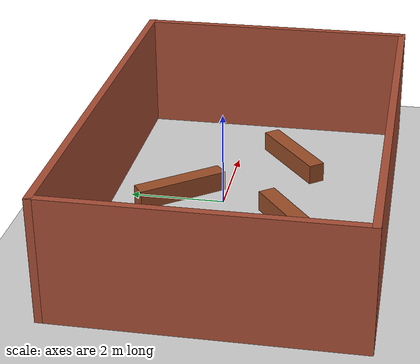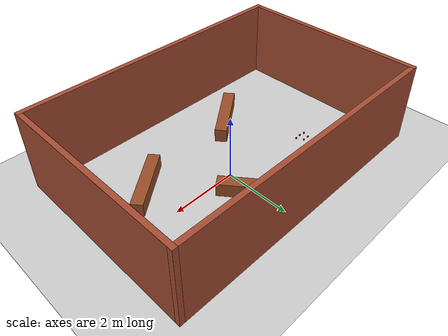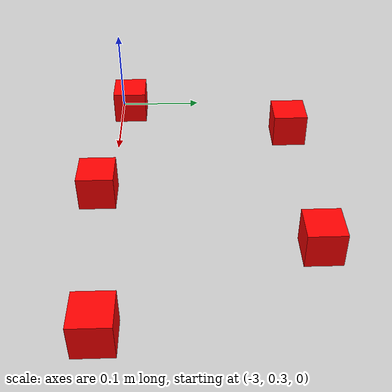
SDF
<sdf version="1.7">
 <world name="default">
  <light name="sun" type="directional">
   <pose>0 0 10 0 -0 0</pose>
   <diffuse>0.8 0.8 0.8 1</diffuse>
   <specular>0.2 0.2 0.2 1</specular>
   <attenuation>
    <range>1000</range>
    <constant>0.9</constant>
    <linear>0.01</linear>
    <quadratic>0.001</quadratic>
   </attenuation>
   <direction>-0.5 0.1 -0.9</direction>
   <spot><inner_angle>0</inner_angle><outer_angle>0</outer_angle><falloff>0</falloff></spot>
  </light>
  <gravity>0 0 -9.8</gravity>
  <magnetic_field>6e-06 2.3e-05 -4.2e-05</magnetic_field>
  <atmosphere type="adiabatic"/>
  <physics type="ode">
   <max_step_size>0.001</max_step_size>
   <real_time_factor>1</real_time_factor>
   <real_time_update_rate>1000</real_time_update_rate>
  </physics>
  <scene><ambient>0.4 0.4 0.4 1</ambient><background>0.7 0.7 0.7 1</background><shadows>1</shadows></scene>
  <audio><device>default</device></audio>
  <spherical_coordinates>
   <surface_model>EARTH_WGS84</surface_model>
   <latitude_deg>0</latitude_deg>
   <longitude_deg>0</longitude_deg>
   <elevation>0</elevation>
   <heading_deg>0</heading_deg>
  </spherical_coordinates>
  <model name="ground_plane">
   <static>1</static>
   <link name="link">
    <collision name="collision">
     <geometry><plane><normal>0 0 1</normal><size>100 100</size></plane></geometry>
     <surface>
      <contact><collide_bitmask>65535</collide_bitmask></contact>
      <friction><ode><mu>100</mu><mu2>50</mu2></ode></friction>
     </surface>
    </collision>
    <visual name="visual">
     <cast_shadows>0</cast_shadows>
     <geometry><plane><normal>0 0 1</normal><size>100 100</size></plane></geometry>
     <material>
      <script><uri>file://media/materials/scripts/gazebo.material</uri><name>Gazebo/Grey</name></script>
     </material>
    </visual>
   </link>
  </model>
  <model name="Construction_world">
   <pose>-0.439433 1.08891 0 0 -0 0</pose>
   <link name="Wall_0">
    <collision name="Wall_0_Collision">
     <geometry><box><size>9 0.15 2.5</size></box></geometry>
     <pose>0 0 1.25 0 -0 0</pose>
    </collision>
    <visual name="Wall_0_Visual">
     <pose>0 0 1.25 0 -0 0</pose>
     <geometry><box><size>9 0.15 2.5</size></box></geometry>
     <material>
      <script><uri>file://media/materials/scripts/gazebo.material</uri><name>Gazebo/Bricks</name></script>
      <ambient>1 1 1 1</ambient>
     </material>
     <meta><layer>0</layer></meta>
    </visual>
    <pose>0 -4.5175 0 0 -0 0</pose>
   </link>
   <link name="Wall_1">
    <collision name="Wall_1_Collision">
     <geometry><box><size>6 0.15 2.5</size></box></geometry>
     <pose>0 0 1.25 0 -0 0</pose>
    </collision>
    <visual name="Wall_1_Visual">
     <pose>0 0 1.25 0 -0 0</pose>
     <geometry><box><size>6 0.15 2.5</size></box></geometry>
     <material>
      <script><uri>file://media/materials/scripts/gazebo.material</uri><name>Gazebo/Bricks</name></script>
      <ambient>1 1 1 1</ambient>
     </material>
     <meta><layer>0</layer></meta>
    </visual>
    <pose>4.425 -1.5925 0 0 -0 1.5708</pose>
   </link>
   <link name="Wall_2">
    <collision name="Wall_2_Collision">
     <geometry><box><size>9 0.15 2.5</size></box></geometry>
     <pose>0 0 1.25 0 -0 0</pose>
    </collision>
    <visual name="Wall_2_Visual">
     <pose>0 0 1.25 0 -0 0</pose>
     <geometry><box><size>9 0.15 2.5</size></box></geometry>
     <material>
      <script><uri>file://media/materials/scripts/gazebo.material</uri><name>Gazebo/Bricks</name></script>
      <ambient>1 1 1 1</ambient>
     </material>
     <meta><layer>0</layer></meta>
    </visual>
    <pose>0 1.3325 0 0 -0 3.14159</pose>
   </link>
   <link name="Wall_3">
    <collision name="Wall_3_Collision">
     <geometry><box><size>6 0.15 2.5</size></box></geometry>
     <pose>0 0 1.25 0 -0 0</pose>
    </collision>
    <visual name="Wall_3_Visual">
     <pose>0 0 1.25 0 -0 0</pose>
     <geometry><box><size>6 0.15 2.5</size></box></geometry>
     <material>
      <script><uri>file://media/materials/scripts/gazebo.material</uri><name>Gazebo/Bricks</name></script>
      <ambient>1 1 1 1</ambient>
     </material>
     <meta><layer>0</layer></meta>
    </visual>
    <pose>-4.425 -1.5925 0 0 -0 -1.5708</pose>
   </link>
   <static>1</static>
  </model>
  <model name="unit_box_clone">
   <link name="link">
    <inertial>
     <mass>1</mass>
     <inertia>
      <ixx>0.166667</ixx>
      <ixy>0</ixy>
      <ixz>0</ixz>
      <iyy>0.166667</iyy>
      <iyz>0</iyz>
      <izz>0.166667</izz>
     </inertia>
    </inertial>
    <visual name="visual">
     <geometry><box><size>1.97101 0.353277 0.425003</size></box></geometry>
     <material>
      <script><name>Gazebo/Grey</name><uri>file://media/materials/scripts/gazebo.material</uri></script>
      <shader type="pixel"><normal_map>__default__</normal_map></shader>
      <ambient>0.4 0.2 0.1 1</ambient>
      <diffuse>0.6 0.3 0.15 1</diffuse>
      <specular>0.2 0.1 0.05 1</specular>
      <emissive>0 0 0 1</emissive>
     </material>
    </visual>
    <collision name="collision">
     <geometry><box><size>1.97101 0.353277 0.425003</size></box></geometry>
     <surface>
      <friction>
       <ode><mu>1</mu><mu2>1</mu2><fdir1>0 0 0</fdir1><slip1>0</slip1><slip2>0</slip2></ode>
       <torsional>
        <coefficient>1</coefficient>
        <patch_radius>0</patch_radius>
        <surface_radius>0</surface_radius>
        <use_patch_radius>1</use_patch_radius>
        <ode><slip>0</slip></ode>
       </torsional>
      </friction>
      <bounce><restitution_coefficient>0</restitution_coefficient><threshold>1e+06</threshold></bounce>
      <contact>
       <collide_without_contact>0</collide_without_contact>
       <collide_without_contact_bitmask>1</collide_without_contact_bitmask>
       <collide_bitmask>1</collide_bitmask>
       <ode>
        <soft_cfm>0</soft_cfm>
        <soft_erp>0.2</soft_erp>
        <kp>1e+13</kp>
        <kd>1</kd>
        <max_vel>0.01</max_vel>
        <min_depth>0</min_depth>
       </ode>
       <bullet>
        <split_impulse>1</split_impulse>
        <split_impulse_penetration_threshold>-0.01</split_impulse_penetration_threshold>
        <soft_cfm>0</soft_cfm>
        <soft_erp>0.2</soft_erp>
        <kp>1e+13</kp>
        <kd>1</kd>
       </bullet>
      </contact>
     </surface>
    </collision>
   </link>
   <static>0</static>
   <pose>0.111388 0.954713 0.205175 0 -0 2.22709</pose>
  </model>
  <model name="unit_box">
   <link name="link">
    <inertial>
     <mass>1</mass>
     <inertia>
      <ixx>0.166667</ixx>
      <ixy>0</ixy>
      <ixz>0</ixz>
      <iyy>0.166667</iyy>
      <iyz>0</iyz>
      <izz>0.166667</izz>
     </inertia>
    </inertial>
    <visual name="visual">
     <geometry><box><size>1.97101 0.353277 0.425003</size></box></geometry>
     <material>
      <script><name>Gazebo/Grey</name><uri>file://media/materials/scripts/gazebo.material</uri></script>
      <shader type="pixel"><normal_map>__default__</normal_map></shader>
      <ambient>0.4 0.2 0.1 1</ambient>
      <diffuse>0.6 0.3 0.15 1</diffuse>
      <specular>0.2 0.1 0.05 1</specular>
      <emissive>0 0 0 1</emissive>
     </material>
    </visual>
    <collision name="collision">
     <geometry><box><size>1.97101 0.353277 0.425003</size></box></geometry>
     <surface>
      <friction>
       <ode><mu>1</mu><mu2>1</mu2><fdir1>0 0 0</fdir1><slip1>0</slip1><slip2>0</slip2></ode>
       <torsional>
        <coefficient>1</coefficient>
        <patch_radius>0</patch_radius>
        <surface_radius>0</surface_radius>
        <use_patch_radius>1</use_patch_radius>
        <ode><slip>0</slip></ode>
       </torsional>
      </friction>
      <bounce><restitution_coefficient>0</restitution_coefficient><threshold>1e+06</threshold></bounce>
      <contact>
       <collide_without_contact>0</collide_without_contact>
       <collide_without_contact_bitmask>1</collide_without_contact_bitmask>
       <collide_bitmask>1</collide_bitmask>
       <ode>
        <soft_cfm>0</soft_cfm>
        <soft_erp>0.2</soft_erp>
        <kp>1e+13</kp>
        <kd>1</kd>
        <max_vel>0.01</max_vel>
        <min_depth>0</min_depth>
       </ode>
       <bullet>
        <split_impulse>1</split_impulse>
        <split_impulse_penetration_threshold>-0.01</split_impulse_penetration_threshold>
        <soft_cfm>0</soft_cfm>
        <soft_erp>0.2</soft_erp>
        <kp>1e+13</kp>
        <kd>1</kd>
       </bullet>
      </contact>
     </surface>
    </collision>
   </link>
   <static>0</static>
   <pose>-1.40515 -1.60993 0.5 0 -0 0.653208</pose>
  </model>
  <model name="unit_box_clone_0">
   <link name="link">
    <inertial>
     <mass>1</mass>
     <inertia>
      <ixx>0.166667</ixx>
      <ixy>0</ixy>
      <ixz>0</ixz>
      <iyy>0.166667</iyy>
      <iyz>0</iyz>
      <izz>0.166667</izz>
     </inertia>
    </inertial>
    <visual name="visual">
     <geometry><box><size>1.97101 0.353277 0.425003</size></box></geometry>
     <material>
      <script><name>Gazebo/Grey</name><uri>file://media/materials/scripts/gazebo.material</uri></script>
      <shader type="pixel"><normal_map>__default__</normal_map></shader>
      <ambient>0.4 0.2 0.1 1</ambient>
      <diffuse>0.6 0.3 0.15 1</diffuse>
      <specular>0.2 0.1 0.05 1</specular>
      <emissive>0 0 0 1</emissive>
     </material>
    </visual>
    <collision name="collision">
     <geometry><box><size>1.97101 0.353277 0.425003</size></box></geometry>
     <surface>
      <friction>
       <ode><mu>1</mu><mu2>1</mu2><fdir1>0 0 0</fdir1><slip1>0</slip1><slip2>0</slip2></ode>
       <torsional>
        <coefficient>1</coefficient>
        <patch_radius>0</patch_radius>
        <surface_radius>0</surface_radius>
        <use_patch_radius>1</use_patch_radius>
        <ode><slip>0</slip></ode>
       </torsional>
      </friction>
      <bounce><restitution_coefficient>0</restitution_coefficient><threshold>1e+06</threshold></bounce>
      <contact>
       <collide_without_contact>0</collide_without_contact>
       <collide_without_contact_bitmask>1</collide_without_contact_bitmask>
       <collide_bitmask>1</collide_bitmask>
       <ode>
        <soft_cfm>0</soft_cfm>
        <soft_erp>0.2</soft_erp>
        <kp>1e+13</kp>
        <kd>1</kd>
        <max_vel>0.01</max_vel>
        <min_depth>0</min_depth>
       </ode>
       <bullet>
        <split_impulse>1</split_impulse>
        <split_impulse_penetration_threshold>-0.01</split_impulse_penetration_threshold>
        <soft_cfm>0</soft_cfm>
        <soft_erp>0.2</soft_erp>
        <kp>1e+13</kp>
        <kd>1</kd>
       </bullet>
      </contact>
     </surface>
    </collision>
   </link>
   <static>0</static>
   <pose>2.01024 -1.23507 0.205175 0 -0 0.664884</pose>
  </model>
  <model name="dummy0_clone_0_clone_0">
   <link name="link">
    <inertial>
     <mass>0.5</mass>
     <inertia>
      <ixx>0.00083333</ixx>
      <ixy>0</ixy>
      <ixz>0</ixz>
      <iyy>0.00083333</iyy>
      <iyz>0</iyz>
      <izz>0.00083333</izz>
     </inertia>
    </inertial>
    <self_collide>1</self_collide>
    <visual name="visual">
     <geometry><box><size>0.04 0.04 0.04</size></box></geometry>
     <material>
      <script><name>Gazebo/Grey</name><uri>file://media/materials/scripts/gazebo.material</uri></script>
      <shader type="pixel"><normal_map>__default__</normal_map></shader>
      <ambient>1 0 0 1</ambient>
      <diffuse>1 0 0 1</diffuse>
      <specular>0.01 0.01 0.01 1</specular>
      <emissive>0 0 0 1</emissive>
     </material>
    </visual>
    <collision name="collision">
     <geometry><box><size>0.04 0.04 0.04</size></box></geometry>
     <surface>
      <friction>
       <ode><mu>1</mu><mu2>1</mu2><fdir1>0 0 0</fdir1><slip1>0</slip1><slip2>0</slip2></ode>
       <torsional>
        <coefficient>1</coefficient>
        <patch_radius>0</patch_radius>
        <surface_radius>0</surface_radius>
        <use_patch_radius>1</use_patch_radius>
        <ode><slip>0</slip></ode>
       </torsional>
      </friction>
      <bounce><restitution_coefficient>0</restitution_coefficient><threshold>1e+06</threshold></bounce>
      <contact>
       <collide_without_contact>0</collide_without_contact>
       <collide_without_contact_bitmask>1</collide_without_contact_bitmask>
       <collide_bitmask>1</collide_bitmask>
       <ode>
        <soft_cfm>0</soft_cfm>
        <soft_erp>0.2</soft_erp>
        <kp>1e+13</kp>
        <kd>1</kd>
        <max_vel>0.01</max_vel>
        <min_depth>0</min_depth>
       </ode>
       <bullet>
        <split_impulse>1</split_impulse>
        <split_impulse_penetration_threshold>-0.01</split_impulse_penetration_threshold>
        <soft_cfm>0</soft_cfm>
        <soft_erp>0.2</soft_erp>
        <kp>1e+13</kp>
        <kd>1</kd>
       </bullet>
      </contact>
     </surface>
    </collision>
   </link>
   <static>0</static>
   <pose>-2.91767 0.510771 0.020366 0 -0 0</pose>
  </model>
  <model name="dummy0_clone_0_clone_1">
   <link name="link">
    <inertial>
     <mass>0.5</mass>
     <inertia>
      <ixx>0.00083333</ixx>
      <ixy>0</ixy>
      <ixz>0</ixz>
      <iyy>0.00083333</iyy>
      <iyz>0</iyz>
      <izz>0.00083333</izz>
     </inertia>
    </inertial>
    <self_collide>1</self_collide>
    <visual name="visual">
     <geometry><box><size>0.04 0.04 0.04</size></box></geometry>
     <material>
      <script><name>Gazebo/Grey</name><uri>file://media/materials/scripts/gazebo.material</uri></script>
      <shader type="pixel"><normal_map>__default__</normal_map></shader>
      <ambient>1 0 0 1</ambient>
      <diffuse>1 0 0 1</diffuse>
      <specular>0.01 0.01 0.01 1</specular>
      <emissive>0 0 0 1</emissive>
     </material>
    </visual>
    <collision name="collision">
     <geometry><box><size>0.04 0.04 0.04</size></box></geometry>
     <surface>
      <friction>
       <ode><mu>1</mu><mu2>1</mu2><fdir1>0 0 0</fdir1><slip1>0</slip1><slip2>0</slip2></ode>
       <torsional>
        <coefficient>1</coefficient>
        <patch_radius>0</patch_radius>
        <surface_radius>0</surface_radius>
        <use_patch_radius>1</use_patch_radius>
        <ode><slip>0</slip></ode>
       </torsional>
      </friction>
      <bounce><restitution_coefficient>0</restitution_coefficient><threshold>1e+06</threshold></bounce>
      <contact>
       <collide_without_contact>0</collide_without_contact>
       <collide_without_contact_bitmask>1</collide_without_contact_bitmask>
       <collide_bitmask>1</collide_bitmask>
       <ode>
        <soft_cfm>0</soft_cfm>
        <soft_erp>0.2</soft_erp>
        <kp>1e+13</kp>
        <kd>1</kd>
        <max_vel>0.01</max_vel>
        <min_depth>0</min_depth>
       </ode>
       <bullet>
        <split_impulse>1</split_impulse>
        <split_impulse_penetration_threshold>-0.01</split_impulse_penetration_threshold>
        <soft_cfm>0</soft_cfm>
        <soft_erp>0.2</soft_erp>
        <kp>1e+13</kp>
        <kd>1</kd>
       </bullet>
      </contact>
     </surface>
    </collision>
   </link>
   <static>0</static>
   <pose>-2.71207 0.517243 0.020366 0 -0 0</pose>
  </model>
  <model name="dummy0_clone_0_clone">
   <link name="link">
    <inertial>
     <mass>0.5</mass>
     <inertia>
      <ixx>0.00083333</ixx>
      <ixy>0</ixy>
      <ixz>0</ixz>
      <iyy>0.00083333</iyy>
      <iyz>0</iyz>
      <izz>0.00083333</izz>
     </inertia>
    </inertial>
    <self_collide>1</self_collide>
    <visual name="visual">
     <geometry><box><size>0.04 0.04 0.04</size></box></geometry>
     <material>
      <script><name>Gazebo/Grey</name><uri>file://media/materials/scripts/gazebo.material</uri></script>
      <shader type="pixel"><normal_map>__default__</normal_map></shader>
      <ambient>1 0 0 1</ambient>
      <diffuse>1 0 0 1</diffuse>
      <specular>0.01 0.01 0.01 1</specular>
      <emissive>0 0 0 1</emissive>
     </material>
    </visual>
    <collision name="collision">
     <geometry><box><size>0.04 0.04 0.04</size></box></geometry>
     <surface>
      <friction>
       <ode><mu>1</mu><mu2>1</mu2><fdir1>0 0 0</fdir1><slip1>0</slip1><slip2>0</slip2></ode>
       <torsional>
        <coefficient>1</coefficient>
        <patch_radius>0</patch_radius>
        <surface_radius>0</surface_radius>
        <use_patch_radius>1</use_patch_radius>
        <ode><slip>0</slip></ode>
       </torsional>
      </friction>
      <bounce><restitution_coefficient>0</restitution_coefficient><threshold>1e+06</threshold></bounce>
      <contact>
       <collide_without_contact>0</collide_without_contact>
       <collide_without_contact_bitmask>1</collide_without_contact_bitmask>
       <collide_bitmask>1</collide_bitmask>
       <ode>
        <soft_cfm>0</soft_cfm>
        <soft_erp>0.2</soft_erp>
        <kp>1e+13</kp>
        <kd>1</kd>
        <max_vel>0.01</max_vel>
        <min_depth>0</min_depth>
       </ode>
       <bullet>
        <split_impulse>1</split_impulse>
        <split_impulse_penetration_threshold>-0.01</split_impulse_penetration_threshold>
        <soft_cfm>0</soft_cfm>
        <soft_erp>0.2</soft_erp>
        <kp>1e+13</kp>
        <kd>1</kd>
       </bullet>
      </contact>
     </surface>
    </collision>
   </link>
   <static>0</static>
   <pose>-2.97715 0.312059 0.020366 0 -0 0</pose>
  </model>
  <model name="dummy0_clone_0">
   <link name="link">
    <inertial>
     <mass>0.5</mass>
     <inertia>
      <ixx>0.00083333</ixx>
      <ixy>0</ixy>
      <ixz>0</ixz>
      <iyy>0.00083333</iyy>
      <iyz>0</iyz>
      <izz>0.00083333</izz>
     </inertia>
    </inertial>
    <self_collide>1</self_collide>
    <visual name="visual">
     <geometry><box><size>0.04 0.04 0.04</size></box></geometry>
     <material>
      <script><name>Gazebo/Grey</name><uri>file://media/materials/scripts/gazebo.material</uri></script>
      <shader type="pixel"><normal_map>__default__</normal_map></shader>
      <ambient>1 0 0 1</ambient>
      <diffuse>1 0 0 1</diffuse>
      <specular>0.01 0.01 0.01 1</specular>
      <emissive>0 0 0 1</emissive>
     </material>
    </visual>
    <collision name="collision">
     <geometry><box><size>0.04 0.04 0.04</size></box></geometry>
     <surface>
      <friction>
       <ode><mu>1</mu><mu2>1</mu2><fdir1>0 0 0</fdir1><slip1>0</slip1><slip2>0</slip2></ode>
       <torsional>
        <coefficient>1</coefficient>
        <patch_radius>0</patch_radius>
        <surface_radius>0</surface_radius>
        <use_patch_radius>1</use_patch_radius>
        <ode><slip>0</slip></ode>
       </torsional>
      </friction>
      <bounce><restitution_coefficient>0</restitution_coefficient><threshold>1e+06</threshold></bounce>
      <contact>
       <collide_without_contact>0</collide_without_contact>
       <collide_without_contact_bitmask>1</collide_without_contact_bitmask>
       <collide_bitmask>1</collide_bitmask>
       <ode>
        <soft_cfm>0</soft_cfm>
        <soft_erp>0.2</soft_erp>
        <kp>1e+13</kp>
        <kd>1</kd>
        <max_vel>0.01</max_vel>
        <min_depth>0</min_depth>
       </ode>
       <bullet>
        <split_impulse>1</split_impulse>
        <split_impulse_penetration_threshold>-0.01</split_impulse_penetration_threshold>
        <soft_cfm>0</soft_cfm>
        <soft_erp>0.2</soft_erp>
        <kp>1e+13</kp>
        <kd>1</kd>
       </bullet>
      </contact>
     </surface>
    </collision>
   </link>
   <static>0</static>
   <pose>-2.805 0.28521 0.020216 0 -0 0</pose>
  </model>
  <model name="dummy0_clone_0_clone_2">
   <link name="link">
    <inertial>
     <mass>0.5</mass>
     <inertia>
      <ixx>0.00083333</ixx>
      <ixy>0</ixy>
      <ixz>0</ixz>
      <iyy>0.00083333</iyy>
      <iyz>0</iyz>
      <izz>0.00083333</izz>
     </inertia>
    </inertial>
    <self_collide>1</self_collide>
    <visual name="visual">
     <geometry><box><size>0.04 0.04 0.04</size></box></geometry>
     <material>
      <script><name>Gazebo/Grey</name><uri>file://media/materials/scripts/gazebo.material</uri></script>
      <shader type="pixel"><normal_map>__default__</normal_map></shader>
      <ambient>1 0 0 1</ambient>
      <diffuse>1 0 0 1</diffuse>
      <specular>0.01 0.01 0.01 1</specular>
      <emissive>0 0 0 1</emissive>
     </material>
    </visual>
    <collision name="collision">
     <geometry><box><size>0.04 0.04 0.04</size></box></geometry>
     <surface>
      <friction>
       <ode><mu>1</mu><mu2>1</mu2><fdir1>0 0 0</fdir1><slip1>0</slip1><slip2>0</slip2></ode>
       <torsional>
        <coefficient>1</coefficient>
        <patch_radius>0</patch_radius>
        <surface_radius>0</surface_radius>
        <use_patch_radius>1</use_patch_radius>
        <ode><slip>0</slip></ode>
       </torsional>
      </friction>
      <bounce><restitution_coefficient>0</restitution_coefficient><threshold>1e+06</threshold></bounce>
      <contact>
       <collide_without_contact>0</collide_without_contact>
       <collide_without_contact_bitmask>1</collide_without_contact_bitmask>
       <collide_bitmask>1</collide_bitmask>
       <ode>
        <soft_cfm>0</soft_cfm>
        <soft_erp>0.2</soft_erp>
        <kp>1e+13</kp>
        <kd>1</kd>
        <max_vel>0.01</max_vel>
        <min_depth>0</min_depth>
       </ode>
       <bullet>
        <split_impulse>1</split_impulse>
        <split_impulse_penetration_threshold>-0.01</split_impulse_penetration_threshold>
        <soft_cfm>0</soft_cfm>
        <soft_erp>0.2</soft_erp>
        <kp>1e+13</kp>
        <kd>1</kd>
       </bullet>
      </contact>
     </surface>
    </collision>
   </link>
   <static>0</static>
   <pose>-2.6119 0.300665 0.020366 0 -0 0</pose>
  </model>
 </world>
</sdf>
